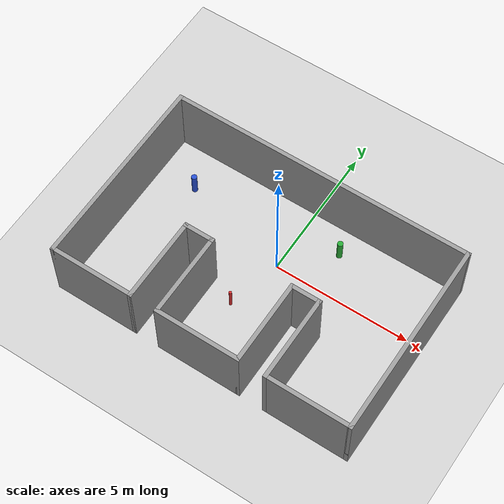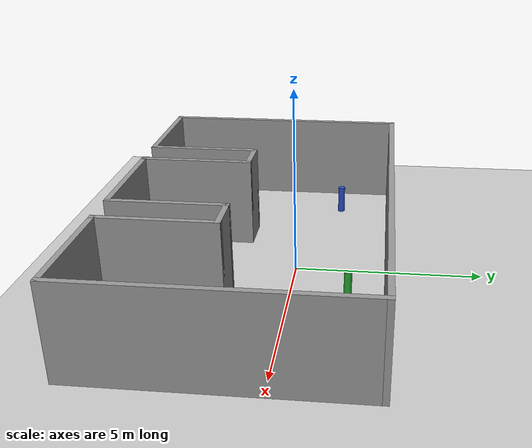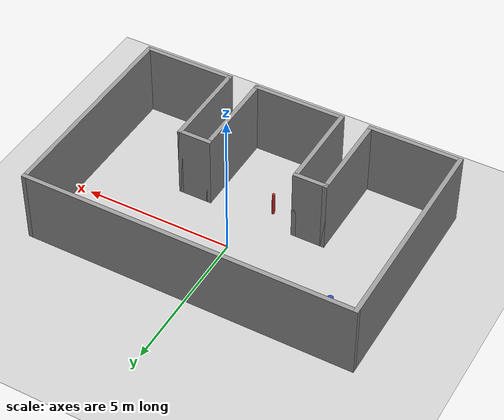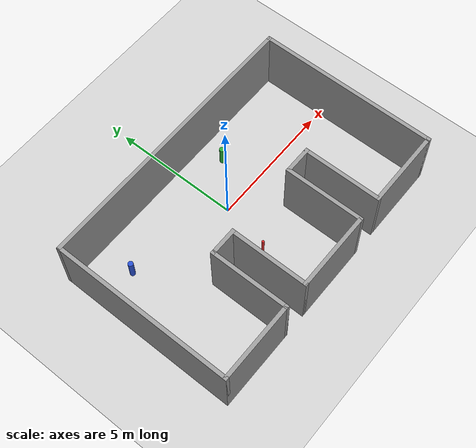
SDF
<sdf version="1.6">
 <world name="default">
  <light name="sun" type="directional">
   <pose>0 0 10 0 -0 0</pose>
   <diffuse>0.8 0.8 0.8 1</diffuse>
   <specular>0.2 0.2 0.2 1</specular>
   <attenuation>
    <range>1000</range>
    <constant>0.9</constant>
    <linear>0.01</linear>
    <quadratic>0.001</quadratic>
   </attenuation>
   <direction>-0.5 0.1 -0.9</direction>
  </light>
  <model name="ground_plane">
   <static>1</static>
   <link name="link">
    <collision name="collision">
     <geometry><plane><normal>0 0 1</normal><size>100 100</size></plane></geometry>
     <surface>
      <contact><collide_bitmask>65535</collide_bitmask></contact>
      <friction><ode><mu>100</mu><mu2>50</mu2></ode></friction>
     </surface>
    </collision>
    <visual name="visual">
     <cast_shadows>0</cast_shadows>
     <geometry><plane><normal>0 0 1</normal><size>100 100</size></plane></geometry>
     <material>
      <script><uri>file://media/materials/scripts/gazebo.material</uri><name>Gazebo/Grey</name></script>
     </material>
    </visual>
   </link>
  </model>
  <gravity>0 0 -9.8</gravity>
  <magnetic_field>6e-06 2.3e-05 -4.2e-05</magnetic_field>
  <atmosphere type="adiabatic"/>
  <physics name="default_physics" default="0" type="ode">
   <max_step_size>0.001</max_step_size>
   <real_time_factor>1</real_time_factor>
   <real_time_update_rate>1000</real_time_update_rate>
  </physics>
  <scene><ambient>0.4 0.4 0.4 1</ambient><background>0.7 0.7 0.7 1</background><shadows>1</shadows></scene>
  <spherical_coordinates>
   <surface_model>EARTH_WGS84</surface_model>
   <latitude_deg>0</latitude_deg>
   <longitude_deg>0</longitude_deg>
   <elevation>0</elevation>
   <heading_deg>0</heading_deg>
  </spherical_coordinates>
  <model name="warehouse">
   <pose>0 -1 0 0 -0 0</pose>
   <link name="Wall_13">
    <collision name="Wall_13_Collision">
     <geometry><box><size>7.15 0.15 2.5</size></box></geometry>
     <pose>0 0 1.25 0 -0 0</pose>
    </collision>
    <visual name="Wall_13_Visual">
     <pose>0 0 1.25 0 -0 0</pose>
     <geometry><box><size>7.15 0.15 2.5</size></box></geometry>
     <material>
      <script><uri>file://media/materials/scripts/gazebo.material</uri><name>Gazebo/Grey</name></script>
      <ambient>1 1 1 1</ambient>
     </material>
     <meta><layer>0</layer></meta>
    </visual>
    <pose>-5.5 0 0 0 -0 -1.5708</pose>
   </link>
   <link name="Wall_14">
    <collision name="Wall_14_Collision">
     <geometry><box><size>3.15 0.15 2.5</size></box></geometry>
     <pose>0 0 1.25 0 -0 0</pose>
    </collision>
    <visual name="Wall_14_Visual">
     <pose>0 0 1.25 0 -0 0</pose>
     <geometry><box><size>3.15 0.15 2.5</size></box></geometry>
     <material>
      <script><uri>file://media/materials/scripts/gazebo.material</uri><name>Gazebo/Grey</name></script>
      <ambient>1 1 1 1</ambient>
     </material>
     <meta><layer>0</layer></meta>
    </visual>
    <pose>-4 -3.5 0 0 -0 0</pose>
   </link>
   <link name="Wall_15">
    <collision name="Wall_15_Collision">
     <geometry><box><size>3.15 0.15 2.5</size></box></geometry>
     <pose>0 0 1.25 0 -0 0</pose>
    </collision>
    <visual name="Wall_15_Visual">
     <pose>0 0 1.25 0 -0 0</pose>
     <geometry><box><size>3.15 0.15 2.5</size></box></geometry>
     <material>
      <script><uri>file://media/materials/scripts/gazebo.material</uri><name>Gazebo/Grey</name></script>
      <ambient>1 1 1 1</ambient>
     </material>
     <meta><layer>0</layer></meta>
    </visual>
    <pose>-2.5 -2 0 0 -0 1.5708</pose>
   </link>
   <link name="Wall_16">
    <collision name="Wall_16_Collision">
     <geometry><box><size>1.15 0.15 2.5</size></box></geometry>
     <pose>0 0 1.25 0 -0 0</pose>
    </collision>
    <visual name="Wall_16_Visual">
     <pose>0 0 1.25 0 -0 0</pose>
     <geometry><box><size>1.15 0.15 2.5</size></box></geometry>
     <material>
      <script><uri>file://media/materials/scripts/gazebo.material</uri><name>Gazebo/Grey</name></script>
      <ambient>1 1 1 1</ambient>
     </material>
     <meta><layer>0</layer></meta>
    </visual>
    <pose>-2 -0.5 0 0 -0 0</pose>
   </link>
   <link name="Wall_17">
    <collision name="Wall_17_Collision">
     <geometry><box><size>3.15 0.15 2.5</size></box></geometry>
     <pose>0 0 1.25 0 -0 0</pose>
    </collision>
    <visual name="Wall_17_Visual">
     <pose>0 0 1.25 0 -0 0</pose>
     <geometry><box><size>3.15 0.15 2.5</size></box></geometry>
     <material>
      <script><uri>file://media/materials/scripts/gazebo.material</uri><name>Gazebo/Grey</name></script>
      <ambient>1 1 1 1</ambient>
     </material>
     <meta><layer>0</layer></meta>
    </visual>
    <pose>-1.5 -2 0 0 -0 -1.5708</pose>
   </link>
   <link name="Wall_18">
    <collision name="Wall_18_Collision">
     <geometry><box><size>3.15 0.15 2.5</size></box></geometry>
     <pose>0 0 1.25 0 -0 0</pose>
    </collision>
    <visual name="Wall_18_Visual">
     <pose>0 0 1.25 0 -0 0</pose>
     <geometry><box><size>3.15 0.15 2.5</size></box></geometry>
     <material>
      <script><uri>file://media/materials/scripts/gazebo.material</uri><name>Gazebo/Grey</name></script>
      <ambient>1 1 1 1</ambient>
     </material>
     <meta><layer>0</layer></meta>
    </visual>
    <pose>0 -3.5 0 0 -0 0</pose>
   </link>
   <link name="Wall_19">
    <collision name="Wall_19_Collision">
     <geometry><box><size>3.15 0.15 2.5</size></box></geometry>
     <pose>0 0 1.25 0 -0 0</pose>
    </collision>
    <visual name="Wall_19_Visual">
     <pose>0 0 1.25 0 -0 0</pose>
     <geometry><box><size>3.15 0.15 2.5</size></box></geometry>
     <material>
      <script><uri>file://media/materials/scripts/gazebo.material</uri><name>Gazebo/Grey</name></script>
      <ambient>1 1 1 1</ambient>
     </material>
     <meta><layer>0</layer></meta>
    </visual>
    <pose>1.5 -2 0 0 -0 1.5708</pose>
   </link>
   <link name="Wall_20">
    <collision name="Wall_20_Collision">
     <geometry><box><size>1.15 0.15 2.5</size></box></geometry>
     <pose>0 0 1.25 0 -0 0</pose>
    </collision>
    <visual name="Wall_20_Visual">
     <pose>0 0 1.25 0 -0 0</pose>
     <geometry><box><size>1.15 0.15 2.5</size></box></geometry>
     <material>
      <script><uri>file://media/materials/scripts/gazebo.material</uri><name>Gazebo/Grey</name></script>
      <ambient>1 1 1 1</ambient>
     </material>
     <meta><layer>0</layer></meta>
    </visual>
    <pose>2 -0.5 0 0 -0 0</pose>
   </link>
   <link name="Wall_21">
    <collision name="Wall_21_Collision">
     <geometry><box><size>3.15 0.15 2.5</size></box></geometry>
     <pose>0 0 1.25 0 -0 0</pose>
    </collision>
    <visual name="Wall_21_Visual">
     <pose>0 0 1.25 0 -0 0</pose>
     <geometry><box><size>3.15 0.15 2.5</size></box></geometry>
     <material>
      <script><uri>file://media/materials/scripts/gazebo.material</uri><name>Gazebo/Grey</name></script>
      <ambient>1 1 1 1</ambient>
     </material>
     <meta><layer>0</layer></meta>
    </visual>
    <pose>2.5 -2 0 0 -0 -1.5708</pose>
   </link>
   <link name="Wall_22">
    <collision name="Wall_22_Collision">
     <geometry><box><size>3.15 0.15 2.5</size></box></geometry>
     <pose>0 0 1.25 0 -0 0</pose>
    </collision>
    <visual name="Wall_22_Visual">
     <pose>0 0 1.25 0 -0 0</pose>
     <geometry><box><size>3.15 0.15 2.5</size></box></geometry>
     <material>
      <script><uri>file://media/materials/scripts/gazebo.material</uri><name>Gazebo/Grey</name></script>
      <ambient>1 1 1 1</ambient>
     </material>
     <meta><layer>0</layer></meta>
    </visual>
    <pose>4 -3.5 0 0 -0 0</pose>
   </link>
   <link name="Wall_23">
    <collision name="Wall_23_Collision">
     <geometry><box><size>7.15 0.15 2.5</size></box></geometry>
     <pose>0 0 1.25 0 -0 0</pose>
    </collision>
    <visual name="Wall_23_Visual">
     <pose>0 0 1.25 0 -0 0</pose>
     <geometry><box><size>7.15 0.15 2.5</size></box></geometry>
     <material>
      <script><uri>file://media/materials/scripts/gazebo.material</uri><name>Gazebo/Grey</name></script>
      <ambient>1 1 1 1</ambient>
     </material>
     <meta><layer>0</layer></meta>
    </visual>
    <pose>5.5 0 0 0 -0 1.5708</pose>
   </link>
   <link name="Wall_24">
    <collision name="Wall_24_Collision">
     <geometry><box><size>11.15 0.15 2.5</size></box></geometry>
     <pose>0 0 1.25 0 -0 0</pose>
    </collision>
    <visual name="Wall_24_Visual">
     <pose>0 0 1.25 0 -0 0</pose>
     <geometry><box><size>11.15 0.15 2.5</size></box></geometry>
     <material>
      <script><uri>file://media/materials/scripts/gazebo.material</uri><name>Gazebo/Grey</name></script>
      <ambient>1 1 1 1</ambient>
     </material>
     <meta><layer>0</layer></meta>
    </visual>
    <pose>0 3.5 0 0 -0 3.14159</pose>
   </link>
   <static>1</static>
  </model>
  <model name="barrier_1">
   <pose>-4 1 0.4 0 0 0</pose>
   <link name="body">
    <inertial>
     <mass>10</mass>
     <inertia><ixx>1.0</ixx><ixy>0</ixy><ixz>0</ixz><iyy>1.0</iyy><iyz>0</iyz><izz>0.5</izz></inertia>
    </inertial>
    <visual name="visual">
     <geometry><cylinder><radius>0.1</radius><length>0.8</length></cylinder></geometry>
     <material>
      <script><uri>file://media/materials/scripts/gazebo.material</uri><name>Gazebo/Blue</name></script>
     </material>
    </visual>
    <collision name="collision">
     <geometry><cylinder><radius>0.1</radius><length>0.8</length></cylinder></geometry>
    </collision>
   </link>
  </model>
  <model name="barrier_2">
   <pose>1.5 1.5 0.4 0 0 0</pose>
   <link name="body">
    <inertial>
     <mass>10</mass>
     <inertia><ixx>1.0</ixx><ixy>0</ixy><ixz>0</ixz><iyy>1.0</iyy><iyz>0</iyz><izz>0.5</izz></inertia>
    </inertial>
    <visual name="visual">
     <geometry><cylinder><radius>0.1</radius><length>0.8</length></cylinder></geometry>
     <material>
      <script><uri>file://media/materials/scripts/gazebo.material</uri><name>Gazebo/Green</name></script>
     </material>
    </visual>
    <collision name="collision">
     <geometry><cylinder><radius>0.05</radius><length>0.8</length></cylinder></geometry>
    </collision>
   </link>
  </model>
  <model name="barrier_3">
   <pose>-0.5 -2 0.4 0 0 0</pose>
   <link name="body">
    <inertial>
     <mass>10</mass>
     <inertia><ixx>1.0</ixx><ixy>0</ixy><ixz>0</ixz><iyy>1.0</iyy><iyz>0</iyz><izz>0.5</izz></inertia>
    </inertial>
    <visual name="visual">
     <geometry><cylinder><radius>0.05</radius><length>0.8</length></cylinder></geometry>
     <material>
      <script><uri>file://media/materials/scripts/gazebo.material</uri><name>Gazebo/Red</name></script>
     </material>
    </visual>
    <collision name="collision">
     <geometry><cylinder><radius>0.05</radius><length>0.8</length></cylinder></geometry>
    </collision>
   </link>
  </model>
 </world>
</sdf>
